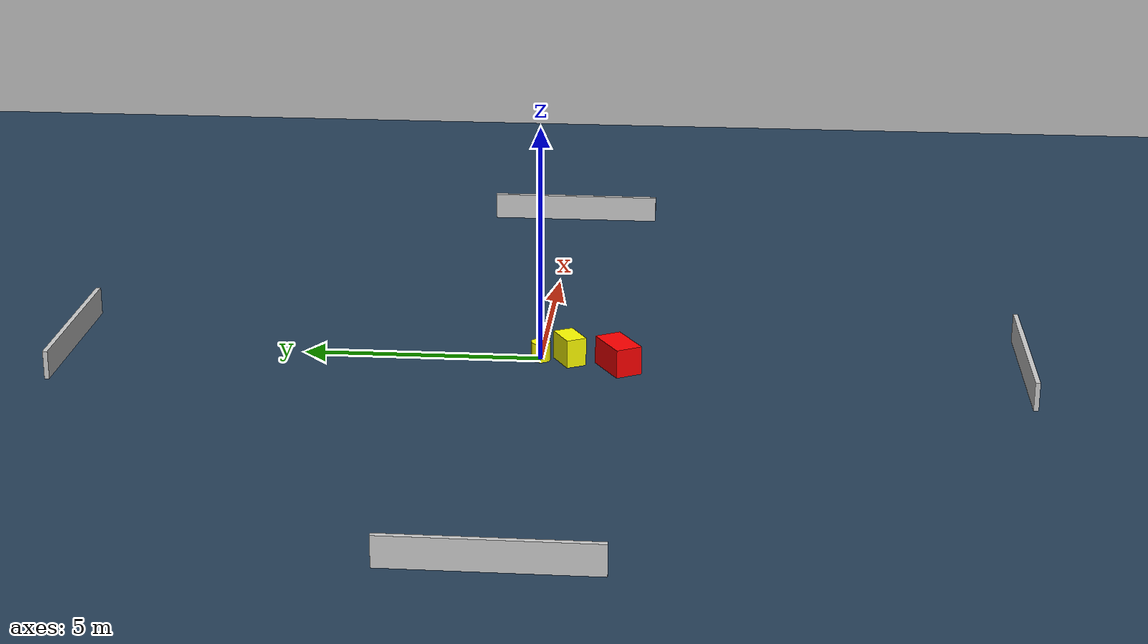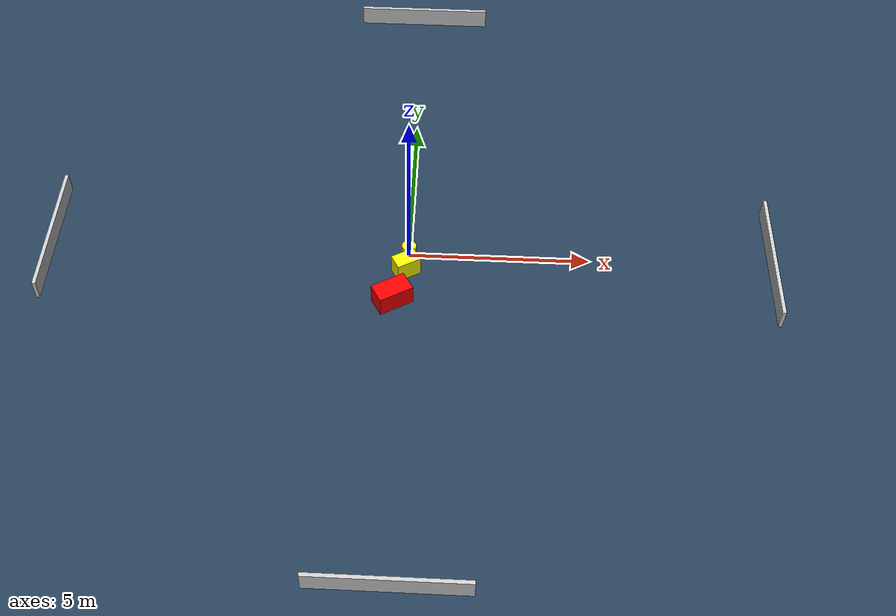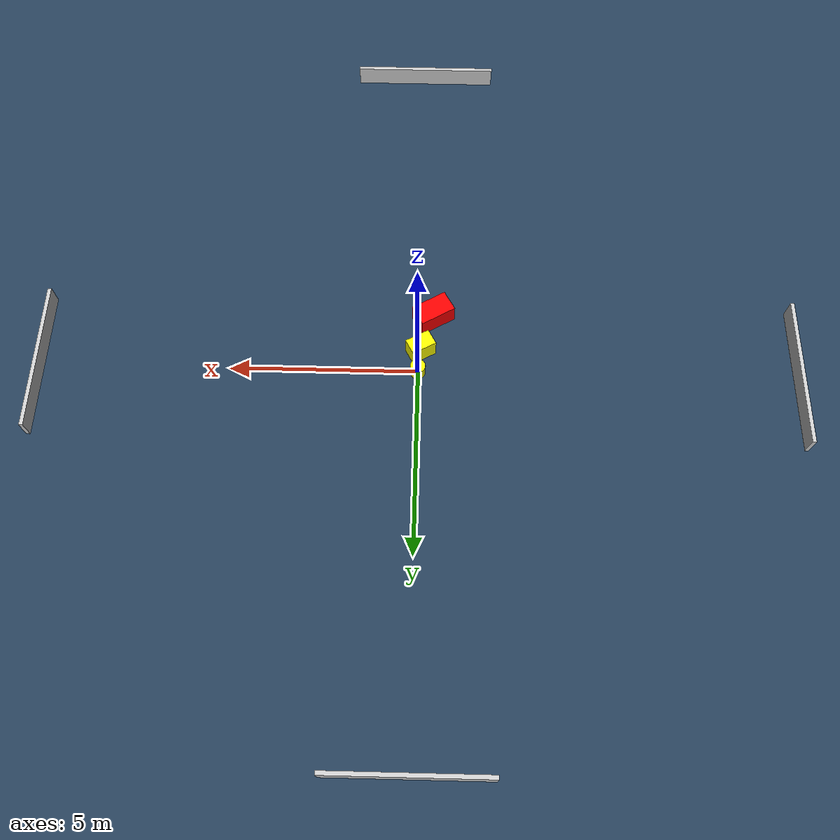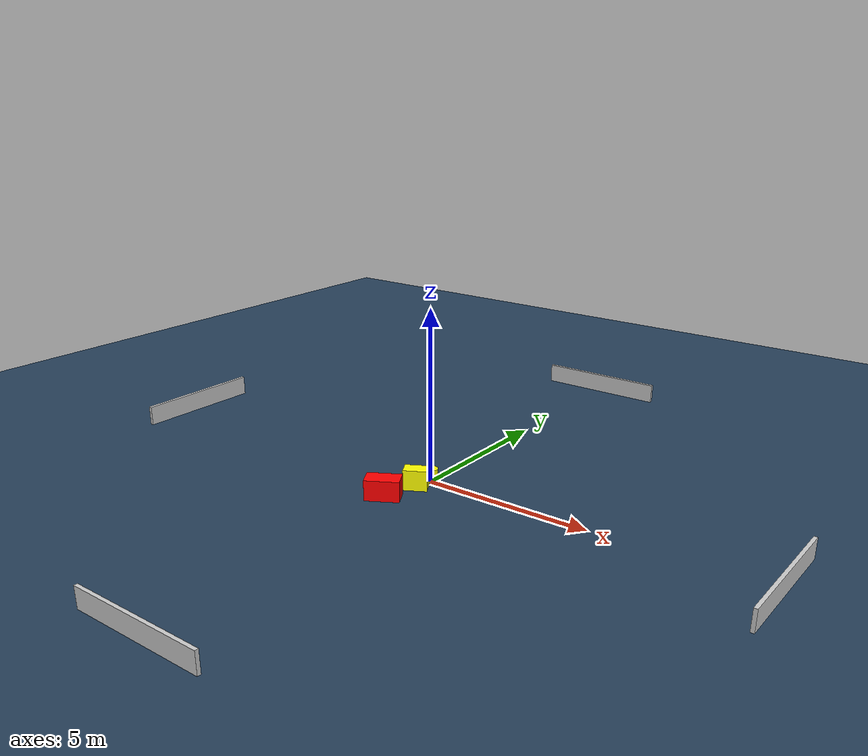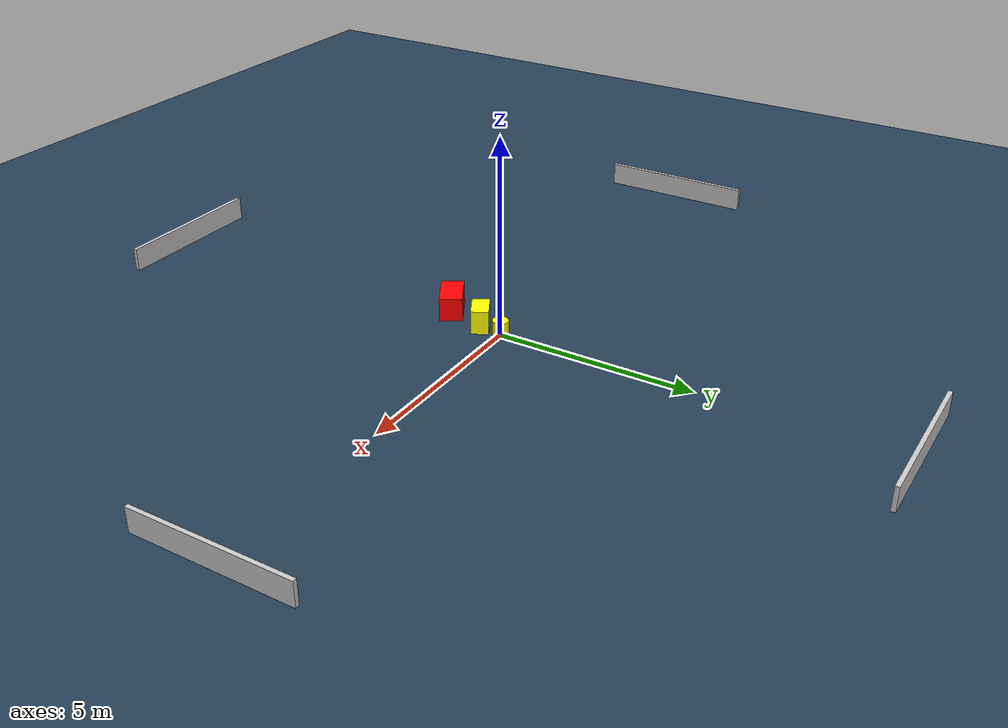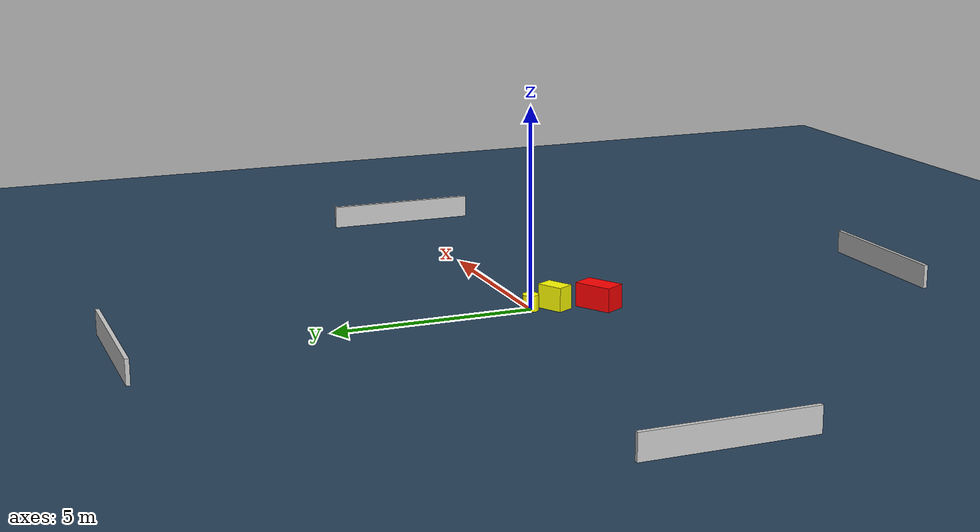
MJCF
<?xml version="1.0" ?>
<mujoco model="generated_environment">
  <option timestep="0.01" integrator="RK4" cone="elliptic"/>
  <default>
    <geom density="1"/>
  </default>
  <asset>
    <texture builtin="gradient" height="3072" name="skybox" rgb1="0.3 0.5 0.7" rgb2="0 0 0" type="skybox" width="512"/>
    <texture builtin="checker" height="300" name="groundplane" rgb1="0.2 0.3 0.4" rgb2="0.1 0.2 0.3" type="2d" width="300"/>
    <material name="groundplane" reflectance="0.2" texrepeat="5 5" texture="groundplane"/>
  </asset>
  <worldbody>
    <light dir="0 0 -1" directional="true" pos="0 0 1.5"/>
    <geom condim="3" friction="0.5 0.005 0.001" material="groundplane" name="floor" pos="0 0 0" size="0 0 0.05" type="plane"/>
    <body name="walls">
      <geom name="wall_1" condim="4" pos="-10.0 0.0 0.3" rgba="0.800000011920929 0.800000011920929 0.800000011920929 1.0" size="0.05 2.0 0.3" type="box"/>
      <geom name="wall_2" condim="4" pos="10.0 0.0 0.3" rgba="0.800000011920929 0.800000011920929 0.800000011920929 1.0" size="0.05 2.0 0.3" type="box"/>
      <geom name="wall_3" condim="4" pos="0.0 -10.0 0.3" rgba="0.800000011920929 0.800000011920929 0.800000011920929 1.0" size="2.0 0.05 0.3" type="box"/>
      <geom name="wall_4" condim="4" pos="0.0 10.0 0.3" rgba="0.800000011920929 0.800000011920929 0.800000011920929 1.0" size="2.0 0.05 0.3" type="box"/>
    </body>
    <body name="robot">
      <joint name="joint_x" type="slide" pos="0 0 0" axis="1 0 0"/>
      <joint name="joint_y" type="slide" pos="0 0 0" axis="0 1 0"/>
      <geom name="robot" type="cylinder" pos="0.0 0.0 0.2" size="0.2 0.2 0.0" mass="5.0" friction="1.0 0.005 0.0001" condim="4" rgba="1.0 1.0 0.0 1.0"/>
    </body>
    <body name="obstacle_1_movable">
      <geom name="obstacle_1_movable" condim="4" pos="-0.06240301469145366 -0.6084550839496761 0.3" euler="0 0 298.85711215070734" friction="0.0 0.005 0.001" rgba="1.0 1.0 0.0 1.0" size="0.21718801745802907 0.3396473990520825 0.3" type="box" mass="0.1"/>
      <joint type="free"/>
    </body>
    <body name="obstacle_2_static">
      <geom name="obstacle_2_static" condim="4" pos="-0.3827777353445724 -1.6400586028467374 0.3" euler="0 0 30.08199810901878" friction="0.0 0.005 0.001" rgba="1.0 0.0 0.0 1.0" size="0.4928376625842977 0.28575008750101016 0.3" type="box"/>
    </body>
  </worldbody>
  <actuator>
    <motor name="actuator_x" joint="joint_x" gear="1" ctrlrange="-1 1"/>
    <motor name="actuator_y" joint="joint_y" gear="1" ctrlrange="-1 1"/>
  </actuator>
</mujoco>
